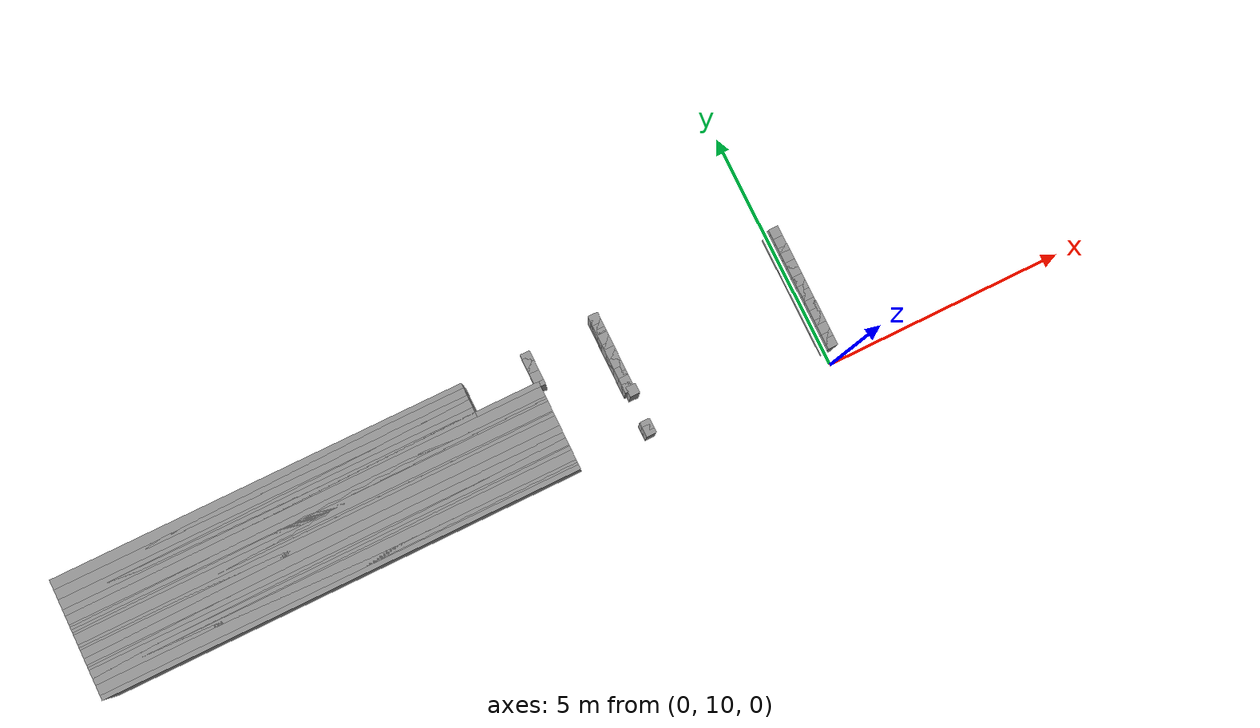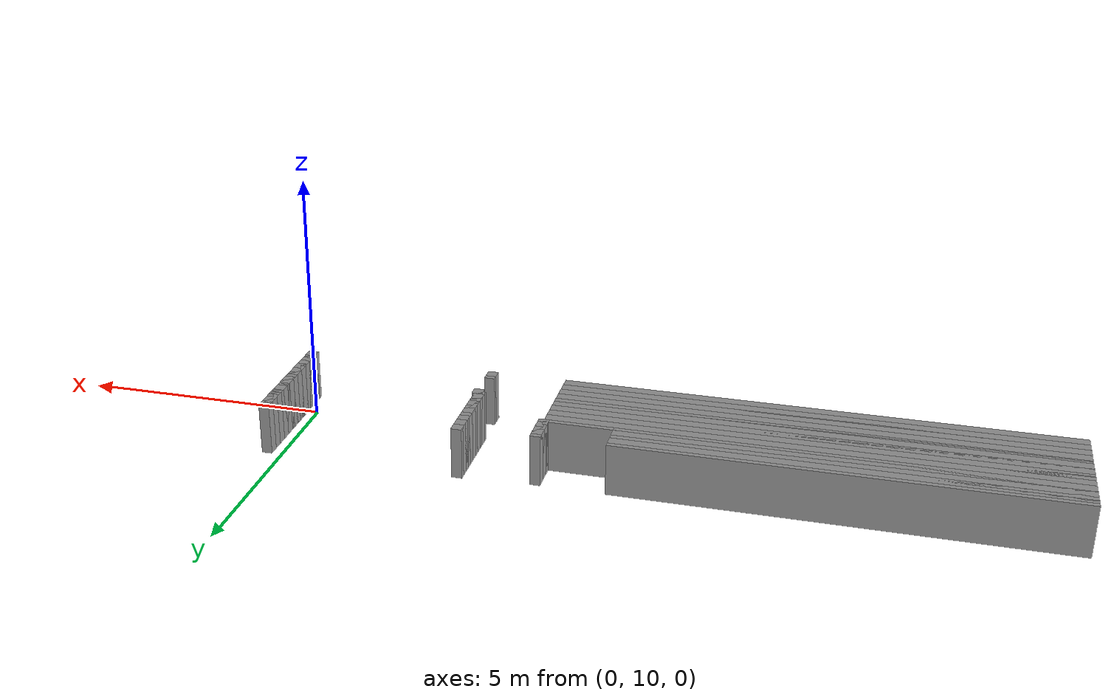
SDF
<sdf version="1.6">
 <world name="GridMap">
  <model name="GridMap">
   <link name="Wall_(1.0,103.0)">
    <collision name="Wall_(1.0,103.0)_Collision">
     <geometry><box><size>0.2 0.2 1.0</size></box></geometry>
     <pose>-0.1 10.3 0.5 0 -0 0</pose>
    </collision>
    <visual name="Wall_(1.0,103.0)_Visual">
     <geometry><box><size>0.2 0.2 1.0</size></box></geometry>
     <pose>-0.1 10.3 0.5 0 -0 0</pose>
     <material>
      <script><uri>file://media/materials/scripts/gazebo.material</uri><name>Gazebo/Grey</name></script>
      <ambient>1 1 1 1</ambient>
     </material>
     <meta><layer>0</layer></meta>
    </visual>
    <pose>0 0 0.5 0 -0 0</pose>
   </link>
   <link name="Wall_(38.5,103.0)">
    <collision name="Wall_(38.5,103.0)_Collision">
     <geometry><box><size>0.2 0.2 1.0</size></box></geometry>
     <pose>-3.85 10.3 0.5 0 -0 0</pose>
    </collision>
    <visual name="Wall_(38.5,103.0)_Visual">
     <geometry><box><size>0.2 0.2 1.0</size></box></geometry>
     <pose>-3.85 10.3 0.5 0 -0 0</pose>
     <material>
      <script><uri>file://media/materials/scripts/gazebo.material</uri><name>Gazebo/Grey</name></script>
      <ambient>1 1 1 1</ambient>
     </material>
     <meta><layer>0</layer></meta>
    </visual>
    <pose>0 0 0.5 0 -0 0</pose>
   </link>
   <link name="Wall_(101.0,103.0)">
    <collision name="Wall_(101.0,103.0)_Collision">
     <geometry><box><size>9.600000000000001 0.2 1.0</size></box></geometry>
     <pose>-10.100000000000001 10.3 0.5 0 -0 0</pose>
    </collision>
    <visual name="Wall_(101.0,103.0)_Visual">
     <geometry><box><size>9.600000000000001 0.2 1.0</size></box></geometry>
     <pose>-10.100000000000001 10.3 0.5 0 -0 0</pose>
     <material>
      <script><uri>file://media/materials/scripts/gazebo.material</uri><name>Gazebo/Grey</name></script>
      <ambient>1 1 1 1</ambient>
     </material>
     <meta><layer>0</layer></meta>
    </visual>
    <pose>0 0 0.5 0 -0 0</pose>
   </link>
   <link name="Wall_(1.0,104.0)">
    <collision name="Wall_(1.0,104.0)_Collision">
     <geometry><box><size>0.2 0.2 1.0</size></box></geometry>
     <pose>-0.1 10.4 0.5 0 -0 0</pose>
    </collision>
    <visual name="Wall_(1.0,104.0)_Visual">
     <geometry><box><size>0.2 0.2 1.0</size></box></geometry>
     <pose>-0.1 10.4 0.5 0 -0 0</pose>
     <material>
      <script><uri>file://media/materials/scripts/gazebo.material</uri><name>Gazebo/Grey</name></script>
      <ambient>1 1 1 1</ambient>
     </material>
     <meta><layer>0</layer></meta>
    </visual>
    <pose>0 0 0.5 0 -0 0</pose>
   </link>
   <link name="Wall_(38.5,104.0)">
    <collision name="Wall_(38.5,104.0)_Collision">
     <geometry><box><size>0.2 0.2 1.0</size></box></geometry>
     <pose>-3.85 10.4 0.5 0 -0 0</pose>
    </collision>
    <visual name="Wall_(38.5,104.0)_Visual">
     <geometry><box><size>0.2 0.2 1.0</size></box></geometry>
     <pose>-3.85 10.4 0.5 0 -0 0</pose>
     <material>
      <script><uri>file://media/materials/scripts/gazebo.material</uri><name>Gazebo/Grey</name></script>
      <ambient>1 1 1 1</ambient>
     </material>
     <meta><layer>0</layer></meta>
    </visual>
    <pose>0 0 0.5 0 -0 0</pose>
   </link>
   <link name="Wall_(101.0,104.0)">
    <collision name="Wall_(101.0,104.0)_Collision">
     <geometry><box><size>9.600000000000001 0.2 1.0</size></box></geometry>
     <pose>-10.100000000000001 10.4 0.5 0 -0 0</pose>
    </collision>
    <visual name="Wall_(101.0,104.0)_Visual">
     <geometry><box><size>9.600000000000001 0.2 1.0</size></box></geometry>
     <pose>-10.100000000000001 10.4 0.5 0 -0 0</pose>
     <material>
      <script><uri>file://media/materials/scripts/gazebo.material</uri><name>Gazebo/Grey</name></script>
      <ambient>1 1 1 1</ambient>
     </material>
     <meta><layer>0</layer></meta>
    </visual>
    <pose>0 0 0.5 0 -0 0</pose>
   </link>
   <link name="Wall_(1.0,105.0)">
    <collision name="Wall_(1.0,105.0)_Collision">
     <geometry><box><size>0.2 0.2 1.0</size></box></geometry>
     <pose>-0.1 10.5 0.5 0 -0 0</pose>
    </collision>
    <visual name="Wall_(1.0,105.0)_Visual">
     <geometry><box><size>0.2 0.2 1.0</size></box></geometry>
     <pose>-0.1 10.5 0.5 0 -0 0</pose>
     <material>
      <script><uri>file://media/materials/scripts/gazebo.material</uri><name>Gazebo/Grey</name></script>
      <ambient>1 1 1 1</ambient>
     </material>
     <meta><layer>0</layer></meta>
    </visual>
    <pose>0 0 0.5 0 -0 0</pose>
   </link>
   <link name="Wall_(101.0,105.0)">
    <collision name="Wall_(101.0,105.0)_Collision">
     <geometry><box><size>9.600000000000001 0.2 1.0</size></box></geometry>
     <pose>-10.100000000000001 10.5 0.5 0 -0 0</pose>
    </collision>
    <visual name="Wall_(101.0,105.0)_Visual">
     <geometry><box><size>9.600000000000001 0.2 1.0</size></box></geometry>
     <pose>-10.100000000000001 10.5 0.5 0 -0 0</pose>
     <material>
      <script><uri>file://media/materials/scripts/gazebo.material</uri><name>Gazebo/Grey</name></script>
      <ambient>1 1 1 1</ambient>
     </material>
     <meta><layer>0</layer></meta>
    </visual>
    <pose>0 0 0.5 0 -0 0</pose>
   </link>
   <link name="Wall_(1.0,106.0)">
    <collision name="Wall_(1.0,106.0)_Collision">
     <geometry><box><size>0.2 0.2 1.0</size></box></geometry>
     <pose>-0.1 10.600000000000001 0.5 0 -0 0</pose>
    </collision>
    <visual name="Wall_(1.0,106.0)_Visual">
     <geometry><box><size>0.2 0.2 1.0</size></box></geometry>
     <pose>-0.1 10.600000000000001 0.5 0 -0 0</pose>
     <material>
      <script><uri>file://media/materials/scripts/gazebo.material</uri><name>Gazebo/Grey</name></script>
      <ambient>1 1 1 1</ambient>
     </material>
     <meta><layer>0</layer></meta>
    </visual>
    <pose>0 0 0.5 0 -0 0</pose>
   </link>
   <link name="Wall_(101.0,106.0)">
    <collision name="Wall_(101.0,106.0)_Collision">
     <geometry><box><size>9.600000000000001 0.2 1.0</size></box></geometry>
     <pose>-10.100000000000001 10.600000000000001 0.5 0 -0 0</pose>
    </collision>
    <visual name="Wall_(101.0,106.0)_Visual">
     <geometry><box><size>9.600000000000001 0.2 1.0</size></box></geometry>
     <pose>-10.100000000000001 10.600000000000001 0.5 0 -0 0</pose>
     <material>
      <script><uri>file://media/materials/scripts/gazebo.material</uri><name>Gazebo/Grey</name></script>
      <ambient>1 1 1 1</ambient>
     </material>
     <meta><layer>0</layer></meta>
    </visual>
    <pose>0 0 0.5 0 -0 0</pose>
   </link>
   <link name="Wall_(1.0,107.0)">
    <collision name="Wall_(1.0,107.0)_Collision">
     <geometry><box><size>0.2 0.2 1.0</size></box></geometry>
     <pose>-0.1 10.700000000000001 0.5 0 -0 0</pose>
    </collision>
    <visual name="Wall_(1.0,107.0)_Visual">
     <geometry><box><size>0.2 0.2 1.0</size></box></geometry>
     <pose>-0.1 10.700000000000001 0.5 0 -0 0</pose>
     <material>
      <script><uri>file://media/materials/scripts/gazebo.material</uri><name>Gazebo/Grey</name></script>
      <ambient>1 1 1 1</ambient>
     </material>
     <meta><layer>0</layer></meta>
    </visual>
    <pose>0 0 0.5 0 -0 0</pose>
   </link>
   <link name="Wall_(101.0,107.0)">
    <collision name="Wall_(101.0,107.0)_Collision">
     <geometry><box><size>9.600000000000001 0.2 1.0</size></box></geometry>
     <pose>-10.100000000000001 10.700000000000001 0.5 0 -0 0</pose>
    </collision>
    <visual name="Wall_(101.0,107.0)_Visual">
     <geometry><box><size>9.600000000000001 0.2 1.0</size></box></geometry>
     <pose>-10.100000000000001 10.700000000000001 0.5 0 -0 0</pose>
     <material>
      <script><uri>file://media/materials/scripts/gazebo.material</uri><name>Gazebo/Grey</name></script>
      <ambient>1 1 1 1</ambient>
     </material>
     <meta><layer>0</layer></meta>
    </visual>
    <pose>0 0 0.5 0 -0 0</pose>
   </link>
   <link name="Wall_(1.0,108.0)">
    <collision name="Wall_(1.0,108.0)_Collision">
     <geometry><box><size>0.2 0.2 1.0</size></box></geometry>
     <pose>-0.1 10.8 0.5 0 -0 0</pose>
    </collision>
    <visual name="Wall_(1.0,108.0)_Visual">
     <geometry><box><size>0.2 0.2 1.0</size></box></geometry>
     <pose>-0.1 10.8 0.5 0 -0 0</pose>
     <material>
      <script><uri>file://media/materials/scripts/gazebo.material</uri><name>Gazebo/Grey</name></script>
      <ambient>1 1 1 1</ambient>
     </material>
     <meta><layer>0</layer></meta>
    </visual>
    <pose>0 0 0.5 0 -0 0</pose>
   </link>
   <link name="Wall_(101.0,108.0)">
    <collision name="Wall_(101.0,108.0)_Collision">
     <geometry><box><size>9.600000000000001 0.2 1.0</size></box></geometry>
     <pose>-10.100000000000001 10.8 0.5 0 -0 0</pose>
    </collision>
    <visual name="Wall_(101.0,108.0)_Visual">
     <geometry><box><size>9.600000000000001 0.2 1.0</size></box></geometry>
     <pose>-10.100000000000001 10.8 0.5 0 -0 0</pose>
     <material>
      <script><uri>file://media/materials/scripts/gazebo.material</uri><name>Gazebo/Grey</name></script>
      <ambient>1 1 1 1</ambient>
     </material>
     <meta><layer>0</layer></meta>
    </visual>
    <pose>0 0 0.5 0 -0 0</pose>
   </link>
   <link name="Wall_(1.0,109.0)">
    <collision name="Wall_(1.0,109.0)_Collision">
     <geometry><box><size>0.2 0.2 1.0</size></box></geometry>
     <pose>-0.1 10.9 0.5 0 -0 0</pose>
    </collision>
    <visual name="Wall_(1.0,109.0)_Visual">
     <geometry><box><size>0.2 0.2 1.0</size></box></geometry>
     <pose>-0.1 10.9 0.5 0 -0 0</pose>
     <material>
      <script><uri>file://media/materials/scripts/gazebo.material</uri><name>Gazebo/Grey</name></script>
      <ambient>1 1 1 1</ambient>
     </material>
     <meta><layer>0</layer></meta>
    </visual>
    <pose>0 0 0.5 0 -0 0</pose>
   </link>
   <link name="Wall_(101.0,109.0)">
    <collision name="Wall_(101.0,109.0)_Collision">
     <geometry><box><size>9.600000000000001 0.2 1.0</size></box></geometry>
     <pose>-10.100000000000001 10.9 0.5 0 -0 0</pose>
    </collision>
    <visual name="Wall_(101.0,109.0)_Visual">
     <geometry><box><size>9.600000000000001 0.2 1.0</size></box></geometry>
     <pose>-10.100000000000001 10.9 0.5 0 -0 0</pose>
     <material>
      <script><uri>file://media/materials/scripts/gazebo.material</uri><name>Gazebo/Grey</name></script>
      <ambient>1 1 1 1</ambient>
     </material>
     <meta><layer>0</layer></meta>
    </visual>
    <pose>0 0 0.5 0 -0 0</pose>
   </link>
   <link name="Wall_(1.0,110.0)">
    <collision name="Wall_(1.0,110.0)_Collision">
     <geometry><box><size>0.2 0.2 1.0</size></box></geometry>
     <pose>-0.1 11.0 0.5 0 -0 0</pose>
    </collision>
    <visual name="Wall_(1.0,110.0)_Visual">
     <geometry><box><size>0.2 0.2 1.0</size></box></geometry>
     <pose>-0.1 11.0 0.5 0 -0 0</pose>
     <material>
      <script><uri>file://media/materials/scripts/gazebo.material</uri><name>Gazebo/Grey</name></script>
      <ambient>1 1 1 1</ambient>
     </material>
     <meta><layer>0</layer></meta>
    </visual>
    <pose>0 0 0.5 0 -0 0</pose>
   </link>
   <link name="Wall_(101.0,110.0)">
    <collision name="Wall_(101.0,110.0)_Collision">
     <geometry><box><size>9.600000000000001 0.2 1.0</size></box></geometry>
     <pose>-10.100000000000001 11.0 0.5 0 -0 0</pose>
    </collision>
    <visual name="Wall_(101.0,110.0)_Visual">
     <geometry><box><size>9.600000000000001 0.2 1.0</size></box></geometry>
     <pose>-10.100000000000001 11.0 0.5 0 -0 0</pose>
     <material>
      <script><uri>file://media/materials/scripts/gazebo.material</uri><name>Gazebo/Grey</name></script>
      <ambient>1 1 1 1</ambient>
     </material>
     <meta><layer>0</layer></meta>
    </visual>
    <pose>0 0 0.5 0 -0 0</pose>
   </link>
   <link name="Wall_(1.0,111.0)">
    <collision name="Wall_(1.0,111.0)_Collision">
     <geometry><box><size>0.2 0.2 1.0</size></box></geometry>
     <pose>-0.1 11.100000000000001 0.5 0 -0 0</pose>
    </collision>
    <visual name="Wall_(1.0,111.0)_Visual">
     <geometry><box><size>0.2 0.2 1.0</size></box></geometry>
     <pose>-0.1 11.100000000000001 0.5 0 -0 0</pose>
     <material>
      <script><uri>file://media/materials/scripts/gazebo.material</uri><name>Gazebo/Grey</name></script>
      <ambient>1 1 1 1</ambient>
     </material>
     <meta><layer>0</layer></meta>
    </visual>
    <pose>0 0 0.5 0 -0 0</pose>
   </link>
   <link name="Wall_(38.0,111.0)">
    <collision name="Wall_(38.0,111.0)_Collision">
     <geometry><box><size>0.2 0.2 1.0</size></box></geometry>
     <pose>-3.8000000000000003 11.100000000000001 0.5 0 -0 0</pose>
    </collision>
    <visual name="Wall_(38.0,111.0)_Visual">
     <geometry><box><size>0.2 0.2 1.0</size></box></geometry>
     <pose>-3.8000000000000003 11.100000000000001 0.5 0 -0 0</pose>
     <material>
      <script><uri>file://media/materials/scripts/gazebo.material</uri><name>Gazebo/Grey</name></script>
      <ambient>1 1 1 1</ambient>
     </material>
     <meta><layer>0</layer></meta>
    </visual>
    <pose>0 0 0.5 0 -0 0</pose>
   </link>
   <link name="Wall_(101.0,111.0)">
    <collision name="Wall_(101.0,111.0)_Collision">
     <geometry><box><size>9.600000000000001 0.2 1.0</size></box></geometry>
     <pose>-10.100000000000001 11.100000000000001 0.5 0 -0 0</pose>
    </collision>
    <visual name="Wall_(101.0,111.0)_Visual">
     <geometry><box><size>9.600000000000001 0.2 1.0</size></box></geometry>
     <pose>-10.100000000000001 11.100000000000001 0.5 0 -0 0</pose>
     <material>
      <script><uri>file://media/materials/scripts/gazebo.material</uri><name>Gazebo/Grey</name></script>
      <ambient>1 1 1 1</ambient>
     </material>
     <meta><layer>0</layer></meta>
    </visual>
    <pose>0 0 0.5 0 -0 0</pose>
   </link>
   <link name="Wall_(1.0,112.0)">
    <collision name="Wall_(1.0,112.0)_Collision">
     <geometry><box><size>0.2 0.2 1.0</size></box></geometry>
     <pose>-0.1 11.200000000000001 0.5 0 -0 0</pose>
    </collision>
    <visual name="Wall_(1.0,112.0)_Visual">
     <geometry><box><size>0.2 0.2 1.0</size></box></geometry>
     <pose>-0.1 11.200000000000001 0.5 0 -0 0</pose>
     <material>
      <script><uri>file://media/materials/scripts/gazebo.material</uri><name>Gazebo/Grey</name></script>
      <ambient>1 1 1 1</ambient>
     </material>
     <meta><layer>0</layer></meta>
    </visual>
    <pose>0 0 0.5 0 -0 0</pose>
   </link>
   <link name="Wall_(38.5,112.0)">
    <collision name="Wall_(38.5,112.0)_Collision">
     <geometry><box><size>0.2 0.2 1.0</size></box></geometry>
     <pose>-3.85 11.200000000000001 0.5 0 -0 0</pose>
    </collision>
    <visual name="Wall_(38.5,112.0)_Visual">
     <geometry><box><size>0.2 0.2 1.0</size></box></geometry>
     <pose>-3.85 11.200000000000001 0.5 0 -0 0</pose>
     <material>
      <script><uri>file://media/materials/scripts/gazebo.material</uri><name>Gazebo/Grey</name></script>
      <ambient>1 1 1 1</ambient>
     </material>
     <meta><layer>0</layer></meta>
    </visual>
    <pose>0 0 0.5 0 -0 0</pose>
   </link>
   <link name="Wall_(101.0,112.0)">
    <collision name="Wall_(101.0,112.0)_Collision">
     <geometry><box><size>9.600000000000001 0.2 1.0</size></box></geometry>
     <pose>-10.100000000000001 11.200000000000001 0.5 0 -0 0</pose>
    </collision>
    <visual name="Wall_(101.0,112.0)_Visual">
     <geometry><box><size>9.600000000000001 0.2 1.0</size></box></geometry>
     <pose>-10.100000000000001 11.200000000000001 0.5 0 -0 0</pose>
     <material>
      <script><uri>file://media/materials/scripts/gazebo.material</uri><name>Gazebo/Grey</name></script>
      <ambient>1 1 1 1</ambient>
     </material>
     <meta><layer>0</layer></meta>
    </visual>
    <pose>0 0 0.5 0 -0 0</pose>
   </link>
   <link name="Wall_(1.0,113.0)">
    <collision name="Wall_(1.0,113.0)_Collision">
     <geometry><box><size>0.2 0.2 1.0</size></box></geometry>
     <pose>-0.1 11.3 0.5 0 -0 0</pose>
    </collision>
    <visual name="Wall_(1.0,113.0)_Visual">
     <geometry><box><size>0.2 0.2 1.0</size></box></geometry>
     <pose>-0.1 11.3 0.5 0 -0 0</pose>
     <material>
      <script><uri>file://media/materials/scripts/gazebo.material</uri><name>Gazebo/Grey</name></script>
      <ambient>1 1 1 1</ambient>
     </material>
     <meta><layer>0</layer></meta>
    </visual>
    <pose>0 0 0.5 0 -0 0</pose>
   </link>
   <link name="Wall_(38.5,113.0)">
    <collision name="Wall_(38.5,113.0)_Collision">
     <geometry><box><size>0.2 0.2 1.0</size></box></geometry>
     <pose>-3.85 11.3 0.5 0 -0 0</pose>
    </collision>
    <visual name="Wall_(38.5,113.0)_Visual">
     <geometry><box><size>0.2 0.2 1.0</size></box></geometry>
     <pose>-3.85 11.3 0.5 0 -0 0</pose>
     <material>
      <script><uri>file://media/materials/scripts/gazebo.material</uri><name>Gazebo/Grey</name></script>
      <ambient>1 1 1 1</ambient>
     </material>
     <meta><layer>0</layer></meta>
    </visual>
    <pose>0 0 0.5 0 -0 0</pose>
   </link>
   <link name="Wall_(101.0,113.0)">
    <collision name="Wall_(101.0,113.0)_Collision">
     <geometry><box><size>9.600000000000001 0.2 1.0</size></box></geometry>
     <pose>-10.100000000000001 11.3 0.5 0 -0 0</pose>
    </collision>
    <visual name="Wall_(101.0,113.0)_Visual">
     <geometry><box><size>9.600000000000001 0.2 1.0</size></box></geometry>
     <pose>-10.100000000000001 11.3 0.5 0 -0 0</pose>
     <material>
      <script><uri>file://media/materials/scripts/gazebo.material</uri><name>Gazebo/Grey</name></script>
      <ambient>1 1 1 1</ambient>
     </material>
     <meta><layer>0</layer></meta>
    </visual>
    <pose>0 0 0.5 0 -0 0</pose>
   </link>
   <link name="Wall_(1.0,114.0)">
    <collision name="Wall_(1.0,114.0)_Collision">
     <geometry><box><size>0.2 0.2 1.0</size></box></geometry>
     <pose>-0.1 11.4 0.5 0 -0 0</pose>
    </collision>
    <visual name="Wall_(1.0,114.0)_Visual">
     <geometry><box><size>0.2 0.2 1.0</size></box></geometry>
     <pose>-0.1 11.4 0.5 0 -0 0</pose>
     <material>
      <script><uri>file://media/materials/scripts/gazebo.material</uri><name>Gazebo/Grey</name></script>
      <ambient>1 1 1 1</ambient>
     </material>
     <meta><layer>0</layer></meta>
    </visual>
    <pose>0 0 0.5 0 -0 0</pose>
   </link>
   <link name="Wall_(38.5,114.0)">
    <collision name="Wall_(38.5,114.0)_Collision">
     <geometry><box><size>0.2 0.2 1.0</size></box></geometry>
     <pose>-3.85 11.4 0.5 0 -0 0</pose>
    </collision>
    <visual name="Wall_(38.5,114.0)_Visual">
     <geometry><box><size>0.2 0.2 1.0</size></box></geometry>
     <pose>-3.85 11.4 0.5 0 -0 0</pose>
     <material>
      <script><uri>file://media/materials/scripts/gazebo.material</uri><name>Gazebo/Grey</name></script>
      <ambient>1 1 1 1</ambient>
     </material>
     <meta><layer>0</layer></meta>
    </visual>
    <pose>0 0 0.5 0 -0 0</pose>
   </link>
   <link name="Wall_(101.0,114.0)">
    <collision name="Wall_(101.0,114.0)_Collision">
     <geometry><box><size>9.600000000000001 0.2 1.0</size></box></geometry>
     <pose>-10.100000000000001 11.4 0.5 0 -0 0</pose>
    </collision>
    <visual name="Wall_(101.0,114.0)_Visual">
     <geometry><box><size>9.600000000000001 0.2 1.0</size></box></geometry>
     <pose>-10.100000000000001 11.4 0.5 0 -0 0</pose>
     <material>
      <script><uri>file://media/materials/scripts/gazebo.material</uri><name>Gazebo/Grey</name></script>
      <ambient>1 1 1 1</ambient>
     </material>
     <meta><layer>0</layer></meta>
    </visual>
    <pose>0 0 0.5 0 -0 0</pose>
   </link>
   <link name="Wall_(1.0,115.0)">
    <collision name="Wall_(1.0,115.0)_Collision">
     <geometry><box><size>0.2 0.2 1.0</size></box></geometry>
     <pose>-0.1 11.5 0.5 0 -0 0</pose>
    </collision>
    <visual name="Wall_(1.0,115.0)_Visual">
     <geometry><box><size>0.2 0.2 1.0</size></box></geometry>
     <pose>-0.1 11.5 0.5 0 -0 0</pose>
     <material>
      <script><uri>file://media/materials/scripts/gazebo.material</uri><name>Gazebo/Grey</name></script>
      <ambient>1 1 1 1</ambient>
     </material>
     <meta><layer>0</layer></meta>
    </visual>
    <pose>0 0 0.5 0 -0 0</pose>
   </link>
   <link name="Wall_(38.5,115.0)">
    <collision name="Wall_(38.5,115.0)_Collision">
     <geometry><box><size>0.2 0.2 1.0</size></box></geometry>
     <pose>-3.85 11.5 0.5 0 -0 0</pose>
    </collision>
    <visual name="Wall_(38.5,115.0)_Visual">
     <geometry><box><size>0.2 0.2 1.0</size></box></geometry>
     <pose>-3.85 11.5 0.5 0 -0 0</pose>
     <material>
      <script><uri>file://media/materials/scripts/gazebo.material</uri><name>Gazebo/Grey</name></script>
      <ambient>1 1 1 1</ambient>
     </material>
     <meta><layer>0</layer></meta>
    </visual>
    <pose>0 0 0.5 0 -0 0</pose>
   </link>
   <link name="Wall_(101.0,115.0)">
    <collision name="Wall_(101.0,115.0)_Collision">
     <geometry><box><size>9.600000000000001 0.2 1.0</size></box></geometry>
     <pose>-10.100000000000001 11.5 0.5 0 -0 0</pose>
    </collision>
    <visual name="Wall_(101.0,115.0)_Visual">
     <geometry><box><size>9.600000000000001 0.2 1.0</size></box></geometry>
     <pose>-10.100000000000001 11.5 0.5 0 -0 0</pose>
     <material>
      <script><uri>file://media/materials/scripts/gazebo.material</uri><name>Gazebo/Grey</name></script>
      <ambient>1 1 1 1</ambient>
     </material>
     <meta><layer>0</layer></meta>
    </visual>
    <pose>0 0 0.5 0 -0 0</pose>
   </link>
   <link name="Wall_(1.0,116.0)">
    <collision name="Wall_(1.0,116.0)_Collision">
     <geometry><box><size>0.2 0.2 1.0</size></box></geometry>
     <pose>-0.1 11.600000000000001 0.5 0 -0 0</pose>
    </collision>
    <visual name="Wall_(1.0,116.0)_Visual">
     <geometry><box><size>0.2 0.2 1.0</size></box></geometry>
     <pose>-0.1 11.600000000000001 0.5 0 -0 0</pose>
     <material>
      <script><uri>file://media/materials/scripts/gazebo.material</uri><name>Gazebo/Grey</name></script>
      <ambient>1 1 1 1</ambient>
     </material>
     <meta><layer>0</layer></meta>
    </visual>
    <pose>0 0 0.5 0 -0 0</pose>
   </link>
   <link name="Wall_(38.5,116.0)">
    <collision name="Wall_(38.5,116.0)_Collision">
     <geometry><box><size>0.2 0.2 1.0</size></box></geometry>
     <pose>-3.85 11.600000000000001 0.5 0 -0 0</pose>
    </collision>
    <visual name="Wall_(38.5,116.0)_Visual">
     <geometry><box><size>0.2 0.2 1.0</size></box></geometry>
     <pose>-3.85 11.600000000000001 0.5 0 -0 0</pose>
     <material>
      <script><uri>file://media/materials/scripts/gazebo.material</uri><name>Gazebo/Grey</name></script>
      <ambient>1 1 1 1</ambient>
     </material>
     <meta><layer>0</layer></meta>
    </visual>
    <pose>0 0 0.5 0 -0 0</pose>
   </link>
   <link name="Wall_(101.0,116.0)">
    <collision name="Wall_(101.0,116.0)_Collision">
     <geometry><box><size>9.600000000000001 0.2 1.0</size></box></geometry>
     <pose>-10.100000000000001 11.600000000000001 0.5 0 -0 0</pose>
    </collision>
    <visual name="Wall_(101.0,116.0)_Visual">
     <geometry><box><size>9.600000000000001 0.2 1.0</size></box></geometry>
     <pose>-10.100000000000001 11.600000000000001 0.5 0 -0 0</pose>
     <material>
      <script><uri>file://media/materials/scripts/gazebo.material</uri><name>Gazebo/Grey</name></script>
      <ambient>1 1 1 1</ambient>
     </material>
     <meta><layer>0</layer></meta>
    </visual>
    <pose>0 0 0.5 0 -0 0</pose>
   </link>
   <link name="Wall_(1.0,117.0)">
    <collision name="Wall_(1.0,117.0)_Collision">
     <geometry><box><size>0.2 0.2 1.0</size></box></geometry>
     <pose>-0.1 11.700000000000001 0.5 0 -0 0</pose>
    </collision>
    <visual name="Wall_(1.0,117.0)_Visual">
     <geometry><box><size>0.2 0.2 1.0</size></box></geometry>
     <pose>-0.1 11.700000000000001 0.5 0 -0 0</pose>
     <material>
      <script><uri>file://media/materials/scripts/gazebo.material</uri><name>Gazebo/Grey</name></script>
      <ambient>1 1 1 1</ambient>
     </material>
     <meta><layer>0</layer></meta>
    </visual>
    <pose>0 0 0.5 0 -0 0</pose>
   </link>
   <link name="Wall_(38.5,117.0)">
    <collision name="Wall_(38.5,117.0)_Collision">
     <geometry><box><size>0.2 0.2 1.0</size></box></geometry>
     <pose>-3.85 11.700000000000001 0.5 0 -0 0</pose>
    </collision>
    <visual name="Wall_(38.5,117.0)_Visual">
     <geometry><box><size>0.2 0.2 1.0</size></box></geometry>
     <pose>-3.85 11.700000000000001 0.5 0 -0 0</pose>
     <material>
      <script><uri>file://media/materials/scripts/gazebo.material</uri><name>Gazebo/Grey</name></script>
      <ambient>1 1 1 1</ambient>
     </material>
     <meta><layer>0</layer></meta>
    </visual>
    <pose>0 0 0.5 0 -0 0</pose>
   </link>
   <link name="Wall_(101.0,117.0)">
    <collision name="Wall_(101.0,117.0)_Collision">
     <geometry><box><size>9.600000000000001 0.2 1.0</size></box></geometry>
     <pose>-10.100000000000001 11.700000000000001 0.5 0 -0 0</pose>
    </collision>
    <visual name="Wall_(101.0,117.0)_Visual">
     <geometry><box><size>9.600000000000001 0.2 1.0</size></box></geometry>
     <pose>-10.100000000000001 11.700000000000001 0.5 0 -0 0</pose>
     <material>
      <script><uri>file://media/materials/scripts/gazebo.material</uri><name>Gazebo/Grey</name></script>
      <ambient>1 1 1 1</ambient>
     </material>
     <meta><layer>0</layer></meta>
    </visual>
    <pose>0 0 0.5 0 -0 0</pose>
   </link>
   <link name="Wall_(1.0,118.0)">
    <collision name="Wall_(1.0,118.0)_Collision">
     <geometry><box><size>0.2 0.2 1.0</size></box></geometry>
     <pose>-0.1 11.8 0.5 0 -0 0</pose>
    </collision>
    <visual name="Wall_(1.0,118.0)_Visual">
     <geometry><box><size>0.2 0.2 1.0</size></box></geometry>
     <pose>-0.1 11.8 0.5 0 -0 0</pose>
     <material>
      <script><uri>file://media/materials/scripts/gazebo.material</uri><name>Gazebo/Grey</name></script>
      <ambient>1 1 1 1</ambient>
     </material>
     <meta><layer>0</layer></meta>
    </visual>
    <pose>0 0 0.5 0 -0 0</pose>
   </link>
   <link name="Wall_(38.5,118.0)">
    <collision name="Wall_(38.5,118.0)_Collision">
     <geometry><box><size>0.2 0.2 1.0</size></box></geometry>
     <pose>-3.85 11.8 0.5 0 -0 0</pose>
    </collision>
    <visual name="Wall_(38.5,118.0)_Visual">
     <geometry><box><size>0.2 0.2 1.0</size></box></geometry>
     <pose>-3.85 11.8 0.5 0 -0 0</pose>
     <material>
      <script><uri>file://media/materials/scripts/gazebo.material</uri><name>Gazebo/Grey</name></script>
      <ambient>1 1 1 1</ambient>
     </material>
     <meta><layer>0</layer></meta>
    </visual>
    <pose>0 0 0.5 0 -0 0</pose>
   </link>
   <link name="Wall_(101.0,118.0)">
    <collision name="Wall_(101.0,118.0)_Collision">
     <geometry><box><size>9.600000000000001 0.2 1.0</size></box></geometry>
     <pose>-10.100000000000001 11.8 0.5 0 -0 0</pose>
    </collision>
    <visual name="Wall_(101.0,118.0)_Visual">
     <geometry><box><size>9.600000000000001 0.2 1.0</size></box></geometry>
     <pose>-10.100000000000001 11.8 0.5 0 -0 0</pose>
     <material>
      <script><uri>file://media/materials/scripts/gazebo.material</uri><name>Gazebo/Grey</name></script>
      <ambient>1 1 1 1</ambient>
     </material>
     <meta><layer>0</layer></meta>
    </visual>
    <pose>0 0 0.5 0 -0 0</pose>
   </link>
   <link name="Wall_(1.0,119.0)">
    <collision name="Wall_(1.0,119.0)_Collision">
     <geometry><box><size>0.2 0.2 1.0</size></box></geometry>
     <pose>-0.1 11.9 0.5 0 -0 0</pose>
    </collision>
    <visual name="Wall_(1.0,119.0)_Visual">
     <geometry><box><size>0.2 0.2 1.0</size></box></geometry>
     <pose>-0.1 11.9 0.5 0 -0 0</pose>
     <material>
      <script><uri>file://media/materials/scripts/gazebo.material</uri><name>Gazebo/Grey</name></script>
      <ambient>1 1 1 1</ambient>
     </material>
     <meta><layer>0</layer></meta>
    </visual>
    <pose>0 0 0.5 0 -0 0</pose>
   </link>
   <link name="Wall_(38.5,119.0)">
    <collision name="Wall_(38.5,119.0)_Collision">
     <geometry><box><size>0.2 0.2 1.0</size></box></geometry>
     <pose>-3.85 11.9 0.5 0 -0 0</pose>
    </collision>
    <visual name="Wall_(38.5,119.0)_Visual">
     <geometry><box><size>0.2 0.2 1.0</size></box></geometry>
     <pose>-3.85 11.9 0.5 0 -0 0</pose>
     <material>
      <script><uri>file://media/materials/scripts/gazebo.material</uri><name>Gazebo/Grey</name></script>
      <ambient>1 1 1 1</ambient>
     </material>
     <meta><layer>0</layer></meta>
    </visual>
    <pose>0 0 0.5 0 -0 0</pose>
   </link>
   <link name="Wall_(101.0,119.0)">
    <collision name="Wall_(101.0,119.0)_Collision">
     <geometry><box><size>9.600000000000001 0.2 1.0</size></box></geometry>
     <pose>-10.100000000000001 11.9 0.5 0 -0 0</pose>
    </collision>
    <visual name="Wall_(101.0,119.0)_Visual">
     <geometry><box><size>9.600000000000001 0.2 1.0</size></box></geometry>
     <pose>-10.100000000000001 11.9 0.5 0 -0 0</pose>
     <material>
      <script><uri>file://media/materials/scripts/gazebo.material</uri><name>Gazebo/Grey</name></script>
      <ambient>1 1 1 1</ambient>
     </material>
     <meta><layer>0</layer></meta>
    </visual>
    <pose>0 0 0.5 0 -0 0</pose>
   </link>
   <link name="Wall_(1.0,120.0)">
    <collision name="Wall_(1.0,120.0)_Collision">
     <geometry><box><size>0.2 0.2 1.0</size></box></geometry>
     <pose>-0.1 12.0 0.5 0 -0 0</pose>
    </collision>
    <visual name="Wall_(1.0,120.0)_Visual">
     <geometry><box><size>0.2 0.2 1.0</size></box></geometry>
     <pose>-0.1 12.0 0.5 0 -0 0</pose>
     <material>
      <script><uri>file://media/materials/scripts/gazebo.material</uri><name>Gazebo/Grey</name></script>
      <ambient>1 1 1 1</ambient>
     </material>
     <meta><layer>0</layer></meta>
    </visual>
    <pose>0 0 0.5 0 -0 0</pose>
   </link>
   <link name="Wall_(38.5,120.0)">
    <collision name="Wall_(38.5,120.0)_Collision">
     <geometry><box><size>0.2 0.2 1.0</size></box></geometry>
     <pose>-3.85 12.0 0.5 0 -0 0</pose>
    </collision>
    <visual name="Wall_(38.5,120.0)_Visual">
     <geometry><box><size>0.2 0.2 1.0</size></box></geometry>
     <pose>-3.85 12.0 0.5 0 -0 0</pose>
     <material>
      <script><uri>file://media/materials/scripts/gazebo.material</uri><name>Gazebo/Grey</name></script>
      <ambient>1 1 1 1</ambient>
     </material>
     <meta><layer>0</layer></meta>
    </visual>
    <pose>0 0 0.5 0 -0 0</pose>
   </link>
   <link name="Wall_(53.0,120.0)">
    <collision name="Wall_(53.0,120.0)_Collision">
     <geometry><box><size>0.2 0.2 1.0</size></box></geometry>
     <pose>-5.300000000000001 12.0 0.5 0 -0 0</pose>
    </collision>
    <visual name="Wall_(53.0,120.0)_Visual">
     <geometry><box><size>0.2 0.2 1.0</size></box></geometry>
     <pose>-5.300000000000001 12.0 0.5 0 -0 0</pose>
     <material>
      <script><uri>file://media/materials/scripts/gazebo.material</uri><name>Gazebo/Grey</name></script>
      <ambient>1 1 1 1</ambient>
     </material>
     <meta><layer>0</layer></meta>
    </visual>
    <pose>0 0 0.5 0 -0 0</pose>
   </link>
   <link name="Wall_(107.5,120.0)">
    <collision name="Wall_(107.5,120.0)_Collision">
     <geometry><box><size>8.3 0.2 1.0</size></box></geometry>
     <pose>-10.75 12.0 0.5 0 -0 0</pose>
    </collision>
    <visual name="Wall_(107.5,120.0)_Visual">
     <geometry><box><size>8.3 0.2 1.0</size></box></geometry>
     <pose>-10.75 12.0 0.5 0 -0 0</pose>
     <material>
      <script><uri>file://media/materials/scripts/gazebo.material</uri><name>Gazebo/Grey</name></script>
      <ambient>1 1 1 1</ambient>
     </material>
     <meta><layer>0</layer></meta>
    </visual>
    <pose>0 0 0.5 0 -0 0</pose>
   </link>
   <link name="Wall_(1.0,121.0)">
    <collision name="Wall_(1.0,121.0)_Collision">
     <geometry><box><size>0.2 0.2 1.0</size></box></geometry>
     <pose>-0.1 12.100000000000001 0.5 0 -0 0</pose>
    </collision>
    <visual name="Wall_(1.0,121.0)_Visual">
     <geometry><box><size>0.2 0.2 1.0</size></box></geometry>
     <pose>-0.1 12.100000000000001 0.5 0 -0 0</pose>
     <material>
      <script><uri>file://media/materials/scripts/gazebo.material</uri><name>Gazebo/Grey</name></script>
      <ambient>1 1 1 1</ambient>
     </material>
     <meta><layer>0</layer></meta>
    </visual>
    <pose>0 0 0.5 0 -0 0</pose>
   </link>
   <link name="Wall_(38.5,121.0)">
    <collision name="Wall_(38.5,121.0)_Collision">
     <geometry><box><size>0.2 0.2 1.0</size></box></geometry>
     <pose>-3.85 12.100000000000001 0.5 0 -0 0</pose>
    </collision>
    <visual name="Wall_(38.5,121.0)_Visual">
     <geometry><box><size>0.2 0.2 1.0</size></box></geometry>
     <pose>-3.85 12.100000000000001 0.5 0 -0 0</pose>
     <material>
      <script><uri>file://media/materials/scripts/gazebo.material</uri><name>Gazebo/Grey</name></script>
      <ambient>1 1 1 1</ambient>
     </material>
     <meta><layer>0</layer></meta>
    </visual>
    <pose>0 0 0.5 0 -0 0</pose>
   </link>
   <link name="Wall_(53.0,121.0)">
    <collision name="Wall_(53.0,121.0)_Collision">
     <geometry><box><size>0.2 0.2 1.0</size></box></geometry>
     <pose>-5.300000000000001 12.100000000000001 0.5 0 -0 0</pose>
    </collision>
    <visual name="Wall_(53.0,121.0)_Visual">
     <geometry><box><size>0.2 0.2 1.0</size></box></geometry>
     <pose>-5.300000000000001 12.100000000000001 0.5 0 -0 0</pose>
     <material>
      <script><uri>file://media/materials/scripts/gazebo.material</uri><name>Gazebo/Grey</name></script>
      <ambient>1 1 1 1</ambient>
     </material>
     <meta><layer>0</layer></meta>
    </visual>
    <pose>0 0 0.5 0 -0 0</pose>
   </link>
   <link name="Wall_(107.5,121.0)">
    <collision name="Wall_(107.5,121.0)_Collision">
     <geometry><box><size>8.3 0.2 1.0</size></box></geometry>
     <pose>-10.75 12.100000000000001 0.5 0 -0 0</pose>
    </collision>
    <visual name="Wall_(107.5,121.0)_Visual">
     <geometry><box><size>8.3 0.2 1.0</size></box></geometry>
     <pose>-10.75 12.100000000000001 0.5 0 -0 0</pose>
     <material>
      <script><uri>file://media/materials/scripts/gazebo.material</uri><name>Gazebo/Grey</name></script>
      <ambient>1 1 1 1</ambient>
     </material>
     <meta><layer>0</layer></meta>
    </visual>
    <pose>0 0 0.5 0 -0 0</pose>
   </link>
   <link name="Wall_(1.0,122.0)">
    <collision name="Wall_(1.0,122.0)_Collision">
     <geometry><box><size>0.2 0.2 1.0</size></box></geometry>
     <pose>-0.1 12.200000000000001 0.5 0 -0 0</pose>
    </collision>
    <visual name="Wall_(1.0,122.0)_Visual">
     <geometry><box><size>0.2 0.2 1.0</size></box></geometry>
     <pose>-0.1 12.200000000000001 0.5 0 -0 0</pose>
     <material>
      <script><uri>file://media/materials/scripts/gazebo.material</uri><name>Gazebo/Grey</name></script>
      <ambient>1 1 1 1</ambient>
     </material>
     <meta><layer>0</layer></meta>
    </visual>
    <pose>0 0 0.5 0 -0 0</pose>
   </link>
   <link name="Wall_(38.5,122.0)">
    <collision name="Wall_(38.5,122.0)_Collision">
     <geometry><box><size>0.2 0.2 1.0</size></box></geometry>
     <pose>-3.85 12.200000000000001 0.5 0 -0 0</pose>
    </collision>
    <visual name="Wall_(38.5,122.0)_Visual">
     <geometry><box><size>0.2 0.2 1.0</size></box></geometry>
     <pose>-3.85 12.200000000000001 0.5 0 -0 0</pose>
     <material>
      <script><uri>file://media/materials/scripts/gazebo.material</uri><name>Gazebo/Grey</name></script>
      <ambient>1 1 1 1</ambient>
     </material>
     <meta><layer>0</layer></meta>
    </visual>
    <pose>0 0 0.5 0 -0 0</pose>
   </link>
   <link name="Wall_(53.0,122.0)">
    <collision name="Wall_(53.0,122.0)_Collision">
     <geometry><box><size>0.2 0.2 1.0</size></box></geometry>
     <pose>-5.300000000000001 12.200000000000001 0.5 0 -0 0</pose>
    </collision>
    <visual name="Wall_(53.0,122.0)_Visual">
     <geometry><box><size>0.2 0.2 1.0</size></box></geometry>
     <pose>-5.300000000000001 12.200000000000001 0.5 0 -0 0</pose>
     <material>
      <script><uri>file://media/materials/scripts/gazebo.material</uri><name>Gazebo/Grey</name></script>
      <ambient>1 1 1 1</ambient>
     </material>
     <meta><layer>0</layer></meta>
    </visual>
    <pose>0 0 0.5 0 -0 0</pose>
   </link>
   <link name="Wall_(107.5,122.0)">
    <collision name="Wall_(107.5,122.0)_Collision">
     <geometry><box><size>8.3 0.2 1.0</size></box></geometry>
     <pose>-10.75 12.200000000000001 0.5 0 -0 0</pose>
    </collision>
    <visual name="Wall_(107.5,122.0)_Visual">
     <geometry><box><size>8.3 0.2 1.0</size></box></geometry>
     <pose>-10.75 12.200000000000001 0.5 0 -0 0</pose>
     <material>
      <script><uri>file://media/materials/scripts/gazebo.material</uri><name>Gazebo/Grey</name></script>
      <ambient>1 1 1 1</ambient>
     </material>
     <meta><layer>0</layer></meta>
    </visual>
    <pose>0 0 0.5 0 -0 0</pose>
   </link>
   <link name="Wall_(1.0,123.0)">
    <collision name="Wall_(1.0,123.0)_Collision">
     <geometry><box><size>0.2 0.2 1.0</size></box></geometry>
     <pose>-0.1 12.3 0.5 0 -0 0</pose>
    </collision>
    <visual name="Wall_(1.0,123.0)_Visual">
     <geometry><box><size>0.2 0.2 1.0</size></box></geometry>
     <pose>-0.1 12.3 0.5 0 -0 0</pose>
     <material>
      <script><uri>file://media/materials/scripts/gazebo.material</uri><name>Gazebo/Grey</name></script>
      <ambient>1 1 1 1</ambient>
     </material>
     <meta><layer>0</layer></meta>
    </visual>
    <pose>0 0 0.5 0 -0 0</pose>
   </link>
   <link name="Wall_(38.5,123.0)">
    <collision name="Wall_(38.5,123.0)_Collision">
     <geometry><box><size>0.2 0.2 1.0</size></box></geometry>
     <pose>-3.85 12.3 0.5 0 -0 0</pose>
    </collision>
    <visual name="Wall_(38.5,123.0)_Visual">
     <geometry><box><size>0.2 0.2 1.0</size></box></geometry>
     <pose>-3.85 12.3 0.5 0 -0 0</pose>
     <material>
      <script><uri>file://media/materials/scripts/gazebo.material</uri><name>Gazebo/Grey</name></script>
      <ambient>1 1 1 1</ambient>
     </material>
     <meta><layer>0</layer></meta>
    </visual>
    <pose>0 0 0.5 0 -0 0</pose>
   </link>
   <link name="Wall_(53.0,123.0)">
    <collision name="Wall_(53.0,123.0)_Collision">
     <geometry><box><size>0.2 0.2 1.0</size></box></geometry>
     <pose>-5.300000000000001 12.3 0.5 0 -0 0</pose>
    </collision>
    <visual name="Wall_(53.0,123.0)_Visual">
     <geometry><box><size>0.2 0.2 1.0</size></box></geometry>
     <pose>-5.300000000000001 12.3 0.5 0 -0 0</pose>
     <material>
      <script><uri>file://media/materials/scripts/gazebo.material</uri><name>Gazebo/Grey</name></script>
      <ambient>1 1 1 1</ambient>
     </material>
     <meta><layer>0</layer></meta>
    </visual>
    <pose>0 0 0.5 0 -0 0</pose>
   </link>
   <link name="Wall_(107.5,123.0)">
    <collision name="Wall_(107.5,123.0)_Collision">
     <geometry><box><size>8.3 0.2 1.0</size></box></geometry>
     <pose>-10.75 12.3 0.5 0 -0 0</pose>
    </collision>
    <visual name="Wall_(107.5,123.0)_Visual">
     <geometry><box><size>8.3 0.2 1.0</size></box></geometry>
     <pose>-10.75 12.3 0.5 0 -0 0</pose>
     <material>
      <script><uri>file://media/materials/scripts/gazebo.material</uri><name>Gazebo/Grey</name></script>
      <ambient>1 1 1 1</ambient>
     </material>
     <meta><layer>0</layer></meta>
    </visual>
    <pose>0 0 0.5 0 -0 0</pose>
   </link>
   <link name="Wall_(1.0,124.0)">
    <collision name="Wall_(1.0,124.0)_Collision">
     <geometry><box><size>0.2 0.2 1.0</size></box></geometry>
     <pose>-0.1 12.4 0.5 0 -0 0</pose>
    </collision>
    <visual name="Wall_(1.0,124.0)_Visual">
     <geometry><box><size>0.2 0.2 1.0</size></box></geometry>
     <pose>-0.1 12.4 0.5 0 -0 0</pose>
     <material>
      <script><uri>file://media/materials/scripts/gazebo.material</uri><name>Gazebo/Grey</name></script>
      <ambient>1 1 1 1</ambient>
     </material>
     <meta><layer>0</layer></meta>
    </visual>
    <pose>0 0 0.5 0 -0 0</pose>
   </link>
   <link name="Wall_(38.5,124.0)">
    <collision name="Wall_(38.5,124.0)_Collision">
     <geometry><box><size>0.2 0.2 1.0</size></box></geometry>
     <pose>-3.85 12.4 0.5 0 -0 0</pose>
    </collision>
    <visual name="Wall_(38.5,124.0)_Visual">
     <geometry><box><size>0.2 0.2 1.0</size></box></geometry>
     <pose>-3.85 12.4 0.5 0 -0 0</pose>
     <material>
      <script><uri>file://media/materials/scripts/gazebo.material</uri><name>Gazebo/Grey</name></script>
      <ambient>1 1 1 1</ambient>
     </material>
     <meta><layer>0</layer></meta>
    </visual>
    <pose>0 0 0.5 0 -0 0</pose>
   </link>
   <link name="Wall_(53.0,124.0)">
    <collision name="Wall_(53.0,124.0)_Collision">
     <geometry><box><size>0.2 0.2 1.0</size></box></geometry>
     <pose>-5.300000000000001 12.4 0.5 0 -0 0</pose>
    </collision>
    <visual name="Wall_(53.0,124.0)_Visual">
     <geometry><box><size>0.2 0.2 1.0</size></box></geometry>
     <pose>-5.300000000000001 12.4 0.5 0 -0 0</pose>
     <material>
      <script><uri>file://media/materials/scripts/gazebo.material</uri><name>Gazebo/Grey</name></script>
      <ambient>1 1 1 1</ambient>
     </material>
     <meta><layer>0</layer></meta>
    </visual>
    <pose>0 0 0.5 0 -0 0</pose>
   </link>
   <link name="Wall_(107.5,124.0)">
    <collision name="Wall_(107.5,124.0)_Collision">
     <geometry><box><size>8.3 0.2 1.0</size></box></geometry>
     <pose>-10.75 12.4 0.5 0 -0 0</pose>
    </collision>
    <visual name="Wall_(107.5,124.0)_Visual">
     <geometry><box><size>8.3 0.2 1.0</size></box></geometry>
     <pose>-10.75 12.4 0.5 0 -0 0</pose>
     <material>
      <script><uri>file://media/materials/scripts/gazebo.material</uri><name>Gazebo/Grey</name></script>
      <ambient>1 1 1 1</ambient>
     </material>
     <meta><layer>0</layer></meta>
    </visual>
    <pose>0 0 0.5 0 -0 0</pose>
   </link>
   <link name="Wall_(1.0,125.0)">
    <collision name="Wall_(1.0,125.0)_Collision">
     <geometry><box><size>0.2 0.2 1.0</size></box></geometry>
     <pose>-0.1 12.5 0.5 0 -0 0</pose>
    </collision>
    <visual name="Wall_(1.0,125.0)_Visual">
     <geometry><box><size>0.2 0.2 1.0</size></box></geometry>
     <pose>-0.1 12.5 0.5 0 -0 0</pose>
     <material>
      <script><uri>file://media/materials/scripts/gazebo.material</uri><name>Gazebo/Grey</name></script>
      <ambient>1 1 1 1</ambient>
     </material>
     <meta><layer>0</layer></meta>
    </visual>
    <pose>0 0 0.5 0 -0 0</pose>
   </link>
   <link name="Wall_(38.5,125.0)">
    <collision name="Wall_(38.5,125.0)_Collision">
     <geometry><box><size>0.2 0.2 1.0</size></box></geometry>
     <pose>-3.85 12.5 0.5 0 -0 0</pose>
    </collision>
    <visual name="Wall_(38.5,125.0)_Visual">
     <geometry><box><size>0.2 0.2 1.0</size></box></geometry>
     <pose>-3.85 12.5 0.5 0 -0 0</pose>
     <material>
      <script><uri>file://media/materials/scripts/gazebo.material</uri><name>Gazebo/Grey</name></script>
      <ambient>1 1 1 1</ambient>
     </material>
     <meta><layer>0</layer></meta>
    </visual>
    <pose>0 0 0.5 0 -0 0</pose>
   </link>
   <link name="Wall_(53.0,125.0)">
    <collision name="Wall_(53.0,125.0)_Collision">
     <geometry><box><size>0.2 0.2 1.0</size></box></geometry>
     <pose>-5.300000000000001 12.5 0.5 0 -0 0</pose>
    </collision>
    <visual name="Wall_(53.0,125.0)_Visual">
     <geometry><box><size>0.2 0.2 1.0</size></box></geometry>
     <pose>-5.300000000000001 12.5 0.5 0 -0 0</pose>
     <material>
      <script><uri>file://media/materials/scripts/gazebo.material</uri><name>Gazebo/Grey</name></script>
      <ambient>1 1 1 1</ambient>
     </material>
     <meta><layer>0</layer></meta>
    </visual>
    <pose>0 0 0.5 0 -0 0</pose>
   </link>
   <link name="Wall_(107.5,125.0)">
    <collision name="Wall_(107.5,125.0)_Collision">
     <geometry><box><size>8.3 0.2 1.0</size></box></geometry>
     <pose>-10.75 12.5 0.5 0 -0 0</pose>
    </collision>
    <visual name="Wall_(107.5,125.0)_Visual">
     <geometry><box><size>8.3 0.2 1.0</size></box></geometry>
     <pose>-10.75 12.5 0.5 0 -0 0</pose>
     <material>
      <script><uri>file://media/materials/scripts/gazebo.material</uri><name>Gazebo/Grey</name></script>
      <ambient>1 1 1 1</ambient>
     </material>
     <meta><layer>0</layer></meta>
    </visual>
    <pose>0 0 0.5 0 -0 0</pose>
   </link>
   <link name="Wall_(1.0,126.0)">
    <collision name="Wall_(1.0,126.0)_Collision">
     <geometry><box><size>0.2 0.2 1.0</size></box></geometry>
     <pose>-0.1 12.600000000000001 0.5 0 -0 0</pose>
    </collision>
    <visual name="Wall_(1.0,126.0)_Visual">
     <geometry><box><size>0.2 0.2 1.0</size></box></geometry>
     <pose>-0.1 12.600000000000001 0.5 0 -0 0</pose>
     <material>
      <script><uri>file://media/materials/scripts/gazebo.material</uri><name>Gazebo/Grey</name></script>
      <ambient>1 1 1 1</ambient>
     </material>
     <meta><layer>0</layer></meta>
    </visual>
    <pose>0 0 0.5 0 -0 0</pose>
   </link>
   <link name="Wall_(38.5,126.0)">
    <collision name="Wall_(38.5,126.0)_Collision">
     <geometry><box><size>0.2 0.2 1.0</size></box></geometry>
     <pose>-3.85 12.600000000000001 0.5 0 -0 0</pose>
    </collision>
    <visual name="Wall_(38.5,126.0)_Visual">
     <geometry><box><size>0.2 0.2 1.0</size></box></geometry>
     <pose>-3.85 12.600000000000001 0.5 0 -0 0</pose>
     <material>
      <script><uri>file://media/materials/scripts/gazebo.material</uri><name>Gazebo/Grey</name></script>
      <ambient>1 1 1 1</ambient>
     </material>
     <meta><layer>0</layer></meta>
    </visual>
    <pose>0 0 0.5 0 -0 0</pose>
   </link>
   <static>1</static>
  </model>
 </world>
</sdf>
